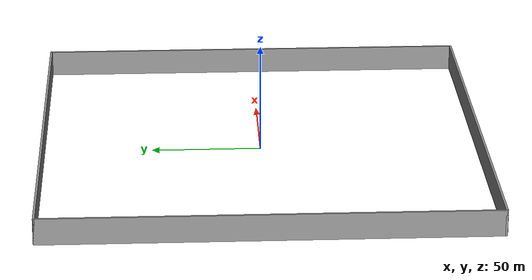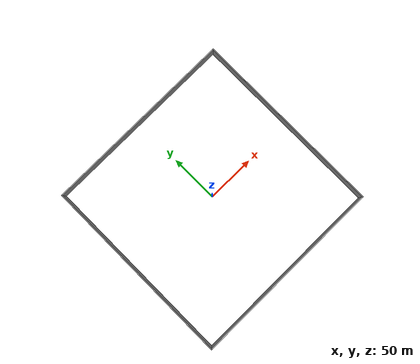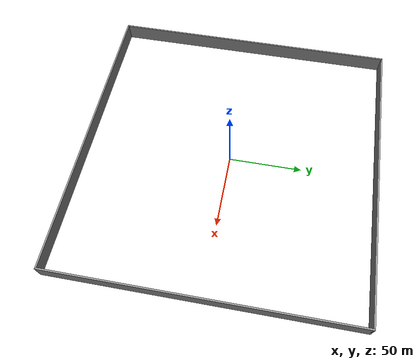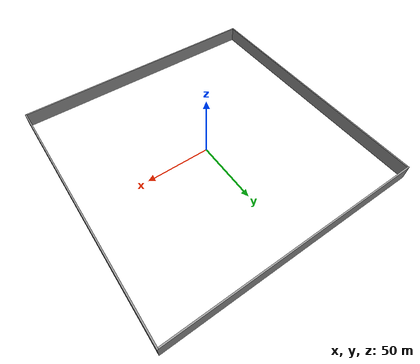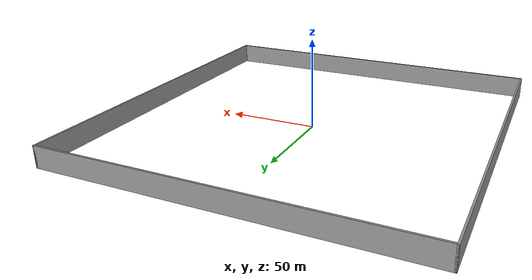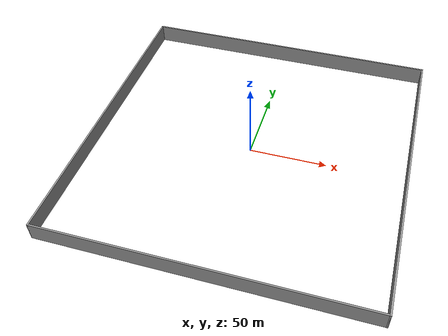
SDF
<sdf version="1.6">
 <world name="default">
  <light name="sun" type="directional">
   <pose>0 0 10 0 -0 0</pose>
   <diffuse>0.8 0.8 0.8 1</diffuse>
   <specular>0.2 0.2 0.2 1</specular>
   <attenuation>
    <range>1000</range>
    <constant>0.9</constant>
    <linear>0.01</linear>
    <quadratic>0.001</quadratic>
   </attenuation>
   <direction>-0.5 0.1 -0.9</direction>
  </light>
  <gravity>0 0 -9.8</gravity>
  <magnetic_field>6e-06 2.3e-05 -4.2e-05</magnetic_field>
  <atmosphere type="adiabatic"/>
  <physics name="default_physics" default="0" type="ode">
   <max_step_size>0.001</max_step_size>
   <real_time_factor>1</real_time_factor>
   <real_time_update_rate>1000</real_time_update_rate>
  </physics>
  <scene><ambient>0.4 0.4 0.4 1</ambient><background>0.7 0.7 0.7 1</background><shadows>1</shadows></scene>
  <spherical_coordinates>
   <surface_model>EARTH_WGS84</surface_model>
   <latitude_deg>0</latitude_deg>
   <longitude_deg>0</longitude_deg>
   <elevation>0</elevation>
   <heading_deg>0</heading_deg>
  </spherical_coordinates>
  <model name="wall1">
   <link name="link">
    <inertial>
     <mass>1</mass>
     <inertia>
      <ixx>0.166667</ixx>
      <ixy>0</ixy>
      <ixz>0</ixz>
      <iyy>0.166667</iyy>
      <iyz>0</iyz>
      <izz>0.166667</izz>
     </inertia>
    </inertial>
    <visual name="visual">
     <geometry><box><size>1 201 12</size></box></geometry>
     <material>
      <script><name>Gazebo/Grey</name><uri>file://media/materials/scripts/gazebo.material</uri></script>
      <shader type="pixel"><normal_map>__default__</normal_map></shader>
      <ambient>0.3 0.3 0.3 1</ambient>
      <diffuse>0.7 0.7 0.7 1</diffuse>
      <specular>0.01 0.01 0.01 1</specular>
      <emissive>0 0 0 1</emissive>
     </material>
    </visual>
    <collision name="collision">
     <geometry><box><size>1 201 12</size></box></geometry>
     <surface>
      <friction>
       <ode><mu>1</mu><mu2>1</mu2><fdir1>0 0 0</fdir1><slip1>0</slip1><slip2>0</slip2></ode>
       <torsional>
        <coefficient>1</coefficient>
        <patch_radius>0</patch_radius>
        <surface_radius>0</surface_radius>
        <use_patch_radius>1</use_patch_radius>
        <ode><slip>0</slip></ode>
       </torsional>
      </friction>
      <bounce><restitution_coefficient>0</restitution_coefficient><threshold>1e+06</threshold></bounce>
      <contact>
       <collide_without_contact>0</collide_without_contact>
       <collide_without_contact_bitmask>1</collide_without_contact_bitmask>
       <collide_bitmask>1</collide_bitmask>
       <ode>
        <soft_cfm>0</soft_cfm>
        <soft_erp>0.2</soft_erp>
        <kp>1e+13</kp>
        <kd>1</kd>
        <max_vel>0.01</max_vel>
        <min_depth>0</min_depth>
       </ode>
       <bullet>
        <split_impulse>1</split_impulse>
        <split_impulse_penetration_threshold>-0.01</split_impulse_penetration_threshold>
        <soft_cfm>0</soft_cfm>
        <soft_erp>0.2</soft_erp>
        <kp>1e+13</kp>
        <kd>1</kd>
       </bullet>
      </contact>
     </surface>
    </collision>
   </link>
   <static>1</static>
   <pose>-100 0 6 0 -0 0</pose>
  </model>
  <model name="wall1_0">
   <link name="link">
    <inertial>
     <mass>1</mass>
     <inertia>
      <ixx>0.166667</ixx>
      <ixy>0</ixy>
      <ixz>0</ixz>
      <iyy>0.166667</iyy>
      <iyz>0</iyz>
      <izz>0.166667</izz>
     </inertia>
    </inertial>
    <visual name="visual">
     <geometry><box><size>1 201 12</size></box></geometry>
     <material>
      <script><name>Gazebo/Grey</name><uri>file://media/materials/scripts/gazebo.material</uri></script>
      <shader type="pixel"><normal_map>__default__</normal_map></shader>
      <ambient>0.3 0.3 0.3 1</ambient>
      <diffuse>0.7 0.7 0.7 1</diffuse>
      <specular>0.01 0.01 0.01 1</specular>
      <emissive>0 0 0 1</emissive>
     </material>
    </visual>
    <collision name="collision">
     <geometry><box><size>1 201 12</size></box></geometry>
     <surface>
      <friction>
       <ode><mu>1</mu><mu2>1</mu2><fdir1>0 0 0</fdir1><slip1>0</slip1><slip2>0</slip2></ode>
       <torsional>
        <coefficient>1</coefficient>
        <patch_radius>0</patch_radius>
        <surface_radius>0</surface_radius>
        <use_patch_radius>1</use_patch_radius>
        <ode><slip>0</slip></ode>
       </torsional>
      </friction>
      <bounce><restitution_coefficient>0</restitution_coefficient><threshold>1e+06</threshold></bounce>
      <contact>
       <collide_without_contact>0</collide_without_contact>
       <collide_without_contact_bitmask>1</collide_without_contact_bitmask>
       <collide_bitmask>1</collide_bitmask>
       <ode>
        <soft_cfm>0</soft_cfm>
        <soft_erp>0.2</soft_erp>
        <kp>1e+13</kp>
        <kd>1</kd>
        <max_vel>0.01</max_vel>
        <min_depth>0</min_depth>
       </ode>
       <bullet>
        <split_impulse>1</split_impulse>
        <split_impulse_penetration_threshold>-0.01</split_impulse_penetration_threshold>
        <soft_cfm>0</soft_cfm>
        <soft_erp>0.2</soft_erp>
        <kp>1e+13</kp>
        <kd>1</kd>
       </bullet>
      </contact>
     </surface>
    </collision>
   </link>
   <static>1</static>
   <pose>100 0 6 0 -0 0</pose>
  </model>
  <model name="wall2">
   <link name="link">
    <inertial>
     <mass>1</mass>
     <inertia>
      <ixx>0.166667</ixx>
      <ixy>0</ixy>
      <ixz>0</ixz>
      <iyy>0.166667</iyy>
      <iyz>0</iyz>
      <izz>0.166667</izz>
     </inertia>
    </inertial>
    <visual name="visual">
     <geometry><box><size>201 1 12</size></box></geometry>
     <material>
      <script><name>Gazebo/Grey</name><uri>file://media/materials/scripts/gazebo.material</uri></script>
      <shader type="pixel"><normal_map>__default__</normal_map></shader>
      <ambient>0.3 0.3 0.3 1</ambient>
      <diffuse>0.7 0.7 0.7 1</diffuse>
      <specular>0.01 0.01 0.01 1</specular>
      <emissive>0 0 0 1</emissive>
     </material>
    </visual>
    <collision name="collision">
     <geometry><box><size>201 1 12</size></box></geometry>
     <surface>
      <friction>
       <ode><mu>1</mu><mu2>1</mu2><fdir1>0 0 0</fdir1><slip1>0</slip1><slip2>0</slip2></ode>
       <torsional>
        <coefficient>1</coefficient>
        <patch_radius>0</patch_radius>
        <surface_radius>0</surface_radius>
        <use_patch_radius>1</use_patch_radius>
        <ode><slip>0</slip></ode>
       </torsional>
      </friction>
      <bounce><restitution_coefficient>0</restitution_coefficient><threshold>1e+06</threshold></bounce>
      <contact>
       <collide_without_contact>0</collide_without_contact>
       <collide_without_contact_bitmask>1</collide_without_contact_bitmask>
       <collide_bitmask>1</collide_bitmask>
       <ode>
        <soft_cfm>0</soft_cfm>
        <soft_erp>0.2</soft_erp>
        <kp>1e+13</kp>
        <kd>1</kd>
        <max_vel>0.01</max_vel>
        <min_depth>0</min_depth>
       </ode>
       <bullet>
        <split_impulse>1</split_impulse>
        <split_impulse_penetration_threshold>-0.01</split_impulse_penetration_threshold>
        <soft_cfm>0</soft_cfm>
        <soft_erp>0.2</soft_erp>
        <kp>1e+13</kp>
        <kd>1</kd>
       </bullet>
      </contact>
     </surface>
    </collision>
   </link>
   <static>1</static>
   <pose>0 100 6 0 -0 0</pose>
  </model>
  <model name="wall2_0">
   <link name="link">
    <inertial>
     <mass>1</mass>
     <inertia>
      <ixx>0.166667</ixx>
      <ixy>0</ixy>
      <ixz>0</ixz>
      <iyy>0.166667</iyy>
      <iyz>0</iyz>
      <izz>0.166667</izz>
     </inertia>
    </inertial>
    <visual name="visual">
     <geometry><box><size>201 1 12</size></box></geometry>
     <material>
      <script><name>Gazebo/Grey</name><uri>file://media/materials/scripts/gazebo.material</uri></script>
      <shader type="pixel"><normal_map>__default__</normal_map></shader>
      <ambient>0.3 0.3 0.3 1</ambient>
      <diffuse>0.7 0.7 0.7 1</diffuse>
      <specular>0.01 0.01 0.01 1</specular>
      <emissive>0 0 0 1</emissive>
     </material>
    </visual>
    <collision name="collision">
     <geometry><box><size>201 1 12</size></box></geometry>
     <surface>
      <friction>
       <ode><mu>1</mu><mu2>1</mu2><fdir1>0 0 0</fdir1><slip1>0</slip1><slip2>0</slip2></ode>
       <torsional>
        <coefficient>1</coefficient>
        <patch_radius>0</patch_radius>
        <surface_radius>0</surface_radius>
        <use_patch_radius>1</use_patch_radius>
        <ode><slip>0</slip></ode>
       </torsional>
      </friction>
      <bounce><restitution_coefficient>0</restitution_coefficient><threshold>1e+06</threshold></bounce>
      <contact>
       <collide_without_contact>0</collide_without_contact>
       <collide_without_contact_bitmask>1</collide_without_contact_bitmask>
       <collide_bitmask>1</collide_bitmask>
       <ode>
        <soft_cfm>0</soft_cfm>
        <soft_erp>0.2</soft_erp>
        <kp>1e+13</kp>
        <kd>1</kd>
        <max_vel>0.01</max_vel>
        <min_depth>0</min_depth>
       </ode>
       <bullet>
        <split_impulse>1</split_impulse>
        <split_impulse_penetration_threshold>-0.01</split_impulse_penetration_threshold>
        <soft_cfm>0</soft_cfm>
        <soft_erp>0.2</soft_erp>
        <kp>1e+13</kp>
        <kd>1</kd>
       </bullet>
      </contact>
     </surface>
    </collision>
   </link>
   <static>1</static>
   <pose>0 -100 6 0 -0 0</pose>
  </model>
 </world>
</sdf>
